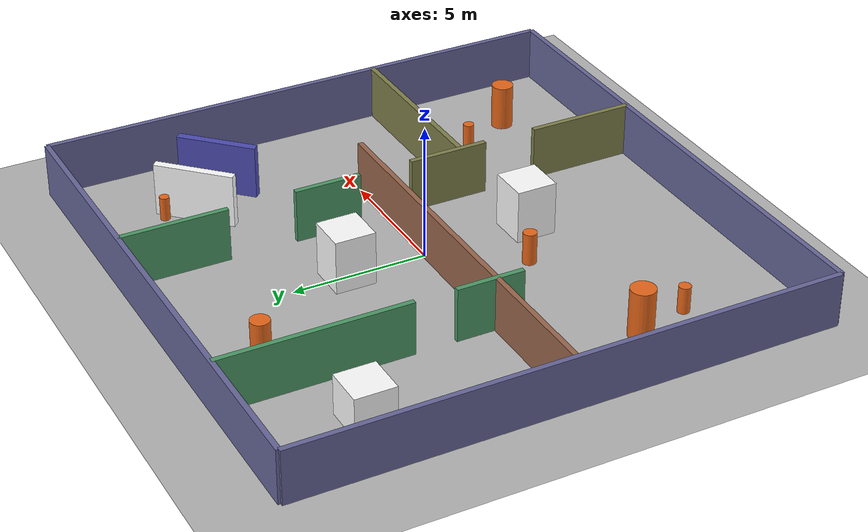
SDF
<?xml version='1.0' encoding='utf-8'?>
<sdf version="1.8">
  <world name="maze">
    <physics name="1ms" type="ignored">
      <max_step_size>0.001</max_step_size>
      <real_time_factor>1</real_time_factor>
    </physics>
    <plugin filename="ignition-gazebo-physics-system" name="ignition::gazebo::systems::Physics" />
    <plugin filename="ignition-gazebo-user-commands-system" name="ignition::gazebo::systems::UserCommands" />
    <plugin filename="ignition-gazebo-scene-broadcaster-system" name="ignition::gazebo::systems::SceneBroadcaster" />
    <plugin filename="ignition-gazebo-sensors-system" name="ignition::gazebo::systems::Sensors">
      <render_engine>ogre2</render_engine>
    </plugin>
    <plugin filename="ignition-gazebo-contact-system" name="ignition::gazebo::systems::Contact" />
    <light name="sun" type="directional">
      <pose>0 0 10 0 0 0</pose>
      <cast_shadows>true</cast_shadows>
      <intensity>1</intensity>
      <direction>-0.5 0.1 -0.9</direction>
      <diffuse>0.8 0.8 0.8 1</diffuse>
      <specular>0.2 0.2 0.2 1</specular>
    </light>
    <model name="ground_plane">
      <static>true</static>
      <link name="link">
        <collision name="collision">
          <geometry>
            <plane>
              <normal>0 0 1</normal>
              <size>100 100</size>
            </plane>
          </geometry>
        </collision>
        <visual name="visual">
          <geometry>
            <plane>
              <normal>0 0 1</normal>
              <size>100 100</size>
            </plane>
          </geometry>
          <material>
            <ambient>0.7 0.7 0.7 1</ambient>
            <diffuse>0.7 0.7 0.7 1</diffuse>
          </material>
        </visual>
      </link>
    </model>
    <model name="wall_north">
      <static>true</static>
      <link name="link">
        <pose>0 10 1 0 0 0</pose>
        <collision name="c">
          <geometry>
            <box>
              <size>20 0.2 2</size>
            </box>
          </geometry>
        </collision>
        <visual name="v">
          <geometry>
            <box>
              <size>20 0.2 2</size>
            </box>
          </geometry>
          <material>
            <ambient>0.4 0.4 0.6 1</ambient>
            <diffuse>0.4 0.4 0.6 1</diffuse>
          </material>
        </visual>
      </link>
    </model>
    <model name="wall_south">
      <static>true</static>
      <link name="link">
        <pose>0 -10 1 0 0 0</pose>
        <collision name="c">
          <geometry>
            <box>
              <size>20 0.2 2</size>
            </box>
          </geometry>
        </collision>
        <visual name="v">
          <geometry>
            <box>
              <size>20 0.2 2</size>
            </box>
          </geometry>
          <material>
            <ambient>0.4 0.4 0.6 1</ambient>
            <diffuse>0.4 0.4 0.6 1</diffuse>
          </material>
        </visual>
      </link>
    </model>
    <model name="wall_east">
      <static>true</static>
      <link name="link">
        <pose>10 0 1 0 0 0</pose>
        <collision name="c">
          <geometry>
            <box>
              <size>0.2 20 2</size>
            </box>
          </geometry>
        </collision>
        <visual name="v">
          <geometry>
            <box>
              <size>0.2 20 2</size>
            </box>
          </geometry>
          <material>
            <ambient>0.4 0.4 0.6 1</ambient>
            <diffuse>0.4 0.4 0.6 1</diffuse>
          </material>
        </visual>
      </link>
    </model>
    <model name="wall_west">
      <static>true</static>
      <link name="link">
        <pose>-10 0 1 0 0 0</pose>
        <collision name="c">
          <geometry>
            <box>
              <size>0.2 20 2</size>
            </box>
          </geometry>
        </collision>
        <visual name="v">
          <geometry>
            <box>
              <size>0.2 20 2</size>
            </box>
          </geometry>
          <material>
            <ambient>0.4 0.4 0.6 1</ambient>
            <diffuse>0.4 0.4 0.6 1</diffuse>
          </material>
        </visual>
      </link>
    </model>
    <model name="h_div_left">
      <static>true</static>
      <link name="link">
        <pose>-2.5 0 1 0 0 0</pose>
        <collision name="c">
          <geometry>
            <box>
              <size>15 0.2 2</size>
            </box>
          </geometry>
        </collision>
        <visual name="v">
          <geometry>
            <box>
              <size>15 0.2 2</size>
            </box>
          </geometry>
          <material>
            <ambient>0.6 0.4 0.3 1</ambient>
            <diffuse>0.6 0.4 0.3 1</diffuse>
          </material>
        </visual>
      </link>
    </model>
    <model name="v_div_left_lower">
      <static>true</static>
      <link name="link">
        <pose>-5 0.25 1 0 0 0</pose>
        <collision name="c">
          <geometry>
            <box>
              <size>0.2 2.5 2</size>
            </box>
          </geometry>
        </collision>
        <visual name="v">
          <geometry>
            <box>
              <size>0.2 2.5 2</size>
            </box>
          </geometry>
          <material>
            <ambient>0.3 0.6 0.4 1</ambient>
            <diffuse>0.3 0.6 0.4 1</diffuse>
          </material>
        </visual>
      </link>
    </model>
    <model name="v_div_left_upper">
      <static>true</static>
      <link name="link">
        <pose>-5 6.5 1 0 0 0</pose>
        <collision name="c">
          <geometry>
            <box>
              <size>0.2 7 2</size>
            </box>
          </geometry>
        </collision>
        <visual name="v">
          <geometry>
            <box>
              <size>0.2 7 2</size>
            </box>
          </geometry>
          <material>
            <ambient>0.3 0.6 0.4 1</ambient>
            <diffuse>0.3 0.6 0.4 1</diffuse>
          </material>
        </visual>
      </link>
    </model>
    <model name="v_div_right_top_lower">
      <static>true</static>
      <link name="link">
        <pose>3 2.25 1 0 0 0</pose>
        <collision name="c">
          <geometry>
            <box>
              <size>0.2 2.5 2</size>
            </box>
          </geometry>
        </collision>
        <visual name="v">
          <geometry>
            <box>
              <size>0.2 2.5 2</size>
            </box>
          </geometry>
          <material>
            <ambient>0.3 0.6 0.4 1</ambient>
            <diffuse>0.3 0.6 0.4 1</diffuse>
          </material>
        </visual>
      </link>
    </model>
    <model name="v_div_right_top_upper">
      <static>true</static>
      <link name="link">
        <pose>3 8 1 0 0 0</pose>
        <collision name="c">
          <geometry>
            <box>
              <size>0.2 4 2</size>
            </box>
          </geometry>
        </collision>
        <visual name="v">
          <geometry>
            <box>
              <size>0.2 4 2</size>
            </box>
          </geometry>
          <material>
            <ambient>0.3 0.6 0.4 1</ambient>
            <diffuse>0.3 0.6 0.4 1</diffuse>
          </material>
        </visual>
      </link>
    </model>
    <model name="br_wall_v_lower">
      <static>true</static>
      <link name="link">
        <pose>3 -8 1 0 0 0</pose>
        <collision name="c">
          <geometry>
            <box>
              <size>0.2 4 2</size>
            </box>
          </geometry>
        </collision>
        <visual name="v">
          <geometry>
            <box>
              <size>0.2 4 2</size>
            </box>
          </geometry>
          <material>
            <ambient>0.5 0.5 0.3 1</ambient>
            <diffuse>0.5 0.5 0.3 1</diffuse>
          </material>
        </visual>
      </link>
    </model>
    <model name="br_wall_v_upper">
      <static>true</static>
      <link name="link">
        <pose>3 -2.5 1 0 0 0</pose>
        <collision name="c">
          <geometry>
            <box>
              <size>0.2 3 2</size>
            </box>
          </geometry>
        </collision>
        <visual name="v">
          <geometry>
            <box>
              <size>0.2 3 2</size>
            </box>
          </geometry>
          <material>
            <ambient>0.5 0.5 0.3 1</ambient>
            <diffuse>0.5 0.5 0.3 1</diffuse>
          </material>
        </visual>
      </link>
    </model>
    <model name="br_wall_h">
      <static>true</static>
      <link name="link">
        <pose>6.5 -3 1 0 0 0</pose>
        <collision name="c">
          <geometry>
            <box>
              <size>7 0.2 2</size>
            </box>
          </geometry>
        </collision>
        <visual name="v">
          <geometry>
            <box>
              <size>7 0.2 2</size>
            </box>
          </geometry>
          <material>
            <ambient>0.5 0.5 0.3 1</ambient>
            <diffuse>0.5 0.5 0.3 1</diffuse>
          </material>
        </visual>
      </link>
    </model>
    <model name="tl_box">
      <static>true</static>
      <link name="link">
        <pose>-7.5 6 0.75 0 0 0</pose>
        <collision name="c">
          <geometry>
            <box>
              <size>1.5 1.5 1.5</size>
            </box>
          </geometry>
        </collision>
        <visual name="v">
          <geometry>
            <box>
              <size>1.5 1.5 1.5</size>
            </box>
          </geometry>
          <material>
            <ambient>1 1 1 1</ambient>
            <diffuse>1 1 1 1</diffuse>
            <specular>0.1 0.1 0.1 1</specular>
            <pbr>
              <metal>
                <albedo_map>file:///mnt/c/Users/user/OneDrive - American University of Beirut/Courses/AMR-EECE698/Project/ext_world/qr_textures/qr_tl_box.png</albedo_map>
              </metal>
            </pbr>
          </material>
        </visual>
      </link>
    </model>
    <model name="pillar_a">
      <static>true</static>
      <link name="link">
        <pose>0 3 1 0 0 0</pose>
        <collision name="c">
          <geometry>
            <box>
              <size>1.5 1.5 2</size>
            </box>
          </geometry>
        </collision>
        <visual name="v">
          <geometry>
            <box>
              <size>1.5 1.5 2</size>
            </box>
          </geometry>
          <material>
            <ambient>1 1 1 1</ambient>
            <diffuse>1 1 1 1</diffuse>
            <specular>0.1 0.1 0.1 1</specular>
            <pbr>
              <metal>
                <albedo_map>file:///mnt/c/Users/user/OneDrive - American University of Beirut/Courses/AMR-EECE698/Project/ext_world/qr_textures/qr_pillar_a.png</albedo_map>
              </metal>
            </pbr>
          </material>
        </visual>
      </link>
    </model>
    <model name="pillar_b">
      <static>true</static>
      <link name="link">
        <pose>0 -4 1 0 0 0</pose>
        <collision name="c">
          <geometry>
            <box>
              <size>1.5 1.5 2</size>
            </box>
          </geometry>
        </collision>
        <visual name="v">
          <geometry>
            <box>
              <size>1.5 1.5 2</size>
            </box>
          </geometry>
          <material>
            <ambient>1 1 1 1</ambient>
            <diffuse>1 1 1 1</diffuse>
            <specular>0.1 0.1 0.1 1</specular>
            <pbr>
              <metal>
                <albedo_map>file:///mnt/c/Users/user/OneDrive - American University of Beirut/Courses/AMR-EECE698/Project/ext_world/qr_textures/qr_pillar_b.png</albedo_map>
              </metal>
            </pbr>
          </material>
        </visual>
      </link>
    </model>
    <model name="diag_block_1">
      <static>true</static>
      <link name="link">
        <pose>6 6 1 0 0 0.785</pose>
        <collision name="c">
          <geometry>
            <box>
              <size>3 0.3 2</size>
            </box>
          </geometry>
        </collision>
        <visual name="v">
          <geometry>
            <box>
              <size>3 0.3 2</size>
            </box>
          </geometry>
          <material>
            <ambient>1 1 1 1</ambient>
            <diffuse>1 1 1 1</diffuse>
            <specular>0.1 0.1 0.1 1</specular>
            <pbr>
              <metal>
                <albedo_map>file:///mnt/c/Users/user/OneDrive - American University of Beirut/Courses/AMR-EECE698/Project/ext_world/qr_textures/qr_diag_block_1.png</albedo_map>
              </metal>
            </pbr>
          </material>
        </visual>
      </link>
    </model>
    <model name="diag_block_2">
      <static>true</static>
      <link name="link">
        <pose>7.5 4.5 1 0 0 0.785</pose>
        <collision name="c">
          <geometry>
            <box>
              <size>3 0.3 2</size>
            </box>
          </geometry>
        </collision>
        <visual name="v">
          <geometry>
            <box>
              <size>3 0.3 2</size>
            </box>
          </geometry>
          <material>
            <ambient>0.3 0.3 0.7 1</ambient>
            <diffuse>0.3 0.3 0.7 1</diffuse>
          </material>
        </visual>
      </link>
    </model>
    <model name="obs_cyl_1">
      <static>true</static>
      <link name="link">
        <pose>1.5 2 0.4 0 0 0</pose>
        <collision name="c">
          <geometry>
            <cylinder>
              <radius>0.12</radius>
              <length>0.8</length>
            </cylinder>
          </geometry>
        </collision>
        <visual name="v">
          <geometry>
            <cylinder>
              <radius>0.12</radius>
              <length>0.8</length>
            </cylinder>
          </geometry>
          <material>
            <ambient>0.9 0.4 0.1 1</ambient>
            <diffuse>0.9 0.4 0.1 1</diffuse>
          </material>
        </visual>
      </link>
    </model>
    <model name="obs_cyl_2">
      <static>true</static>
      <link name="link">
        <pose>-2 -3 0.6 0 0 0</pose>
        <collision name="c">
          <geometry>
            <cylinder>
              <radius>0.25</radius>
              <length>1.2</length>
            </cylinder>
          </geometry>
        </collision>
        <visual name="v">
          <geometry>
            <cylinder>
              <radius>0.25</radius>
              <length>1.2</length>
            </cylinder>
          </geometry>
          <material>
            <ambient>0.9 0.4 0.1 1</ambient>
            <diffuse>0.9 0.4 0.1 1</diffuse>
          </material>
        </visual>
      </link>
    </model>
    <model name="obs_cyl_3">
      <static>true</static>
      <link name="link">
        <pose>-7 -6 0.5 0 0 0</pose>
        <collision name="c">
          <geometry>
            <cylinder>
              <radius>0.22</radius>
              <length>1.0</length>
            </cylinder>
          </geometry>
        </collision>
        <visual name="v">
          <geometry>
            <cylinder>
              <radius>0.22</radius>
              <length>1.0</length>
            </cylinder>
          </geometry>
          <material>
            <ambient>0.9 0.4 0.1 1</ambient>
            <diffuse>0.9 0.4 0.1 1</diffuse>
          </material>
        </visual>
      </link>
    </model>
    <model name="obs_cyl_4">
      <static>true</static>
      <link name="link">
        <pose>7 -7 0.85 0 0 0</pose>
        <collision name="c">
          <geometry>
            <cylinder>
              <radius>0.4</radius>
              <length>1.7</length>
            </cylinder>
          </geometry>
        </collision>
        <visual name="v">
          <geometry>
            <cylinder>
              <radius>0.4</radius>
              <length>1.7</length>
            </cylinder>
          </geometry>
          <material>
            <ambient>0.9 0.4 0.1 1</ambient>
            <diffuse>0.9 0.4 0.1 1</diffuse>
          </material>
        </visual>
      </link>
    </model>
    <model name="obs_cyl_5">
      <static>true</static>
      <link name="link">
        <pose>-3 7.5 0.75 0 0 0</pose>
        <collision name="c">
          <geometry>
            <cylinder>
              <radius>0.35</radius>
              <length>1.5</length>
            </cylinder>
          </geometry>
        </collision>
        <visual name="v">
          <geometry>
            <cylinder>
              <radius>0.35</radius>
              <length>1.5</length>
            </cylinder>
          </geometry>
          <material>
            <ambient>0.9 0.4 0.1 1</ambient>
            <diffuse>0.9 0.4 0.1 1</diffuse>
          </material>
        </visual>
      </link>
    </model>
    <model name="obs_cyl_6">
      <static>true</static>
      <link name="link">
        <pose>6 -5 0.5 0 0 0</pose>
        <collision name="c">
          <geometry>
            <cylinder>
              <radius>0.2</radius>
              <length>1.0</length>
            </cylinder>
          </geometry>
        </collision>
        <visual name="v">
          <geometry>
            <cylinder>
              <radius>0.2</radius>
              <length>1.0</length>
            </cylinder>
          </geometry>
          <material>
            <ambient>0.9 0.4 0.1 1</ambient>
            <diffuse>0.9 0.4 0.1 1</diffuse>
          </material>
        </visual>
      </link>
    </model>
    <model name="obs_cyl_7">
      <static>true</static>
      <link name="link">
        <pose>6.5 7 0.45 0 0 0</pose>
        <collision name="c">
          <geometry>
            <cylinder>
              <radius>0.18</radius>
              <length>0.9</length>
            </cylinder>
          </geometry>
        </collision>
        <visual name="v">
          <geometry>
            <cylinder>
              <radius>0.18</radius>
              <length>0.9</length>
            </cylinder>
          </geometry>
          <material>
            <ambient>0.9 0.4 0.1 1</ambient>
            <diffuse>0.9 0.4 0.1 1</diffuse>
          </material>
        </visual>
      </link>
    </model>
    <model name="obs_cyl_8">
      <static>true</static>
      <link name="link">
        <pose>-7.5 -4 0.9 0 0 0</pose>
        <collision name="c">
          <geometry>
            <cylinder>
              <radius>0.45</radius>
              <length>1.8</length>
            </cylinder>
          </geometry>
        </collision>
        <visual name="v">
          <geometry>
            <cylinder>
              <radius>0.45</radius>
              <length>1.8</length>
            </cylinder>
          </geometry>
          <material>
            <ambient>0.9 0.4 0.1 1</ambient>
            <diffuse>0.9 0.4 0.1 1</diffuse>
          </material>
        </visual>
      </link>
    </model>
  </world>
</sdf>
